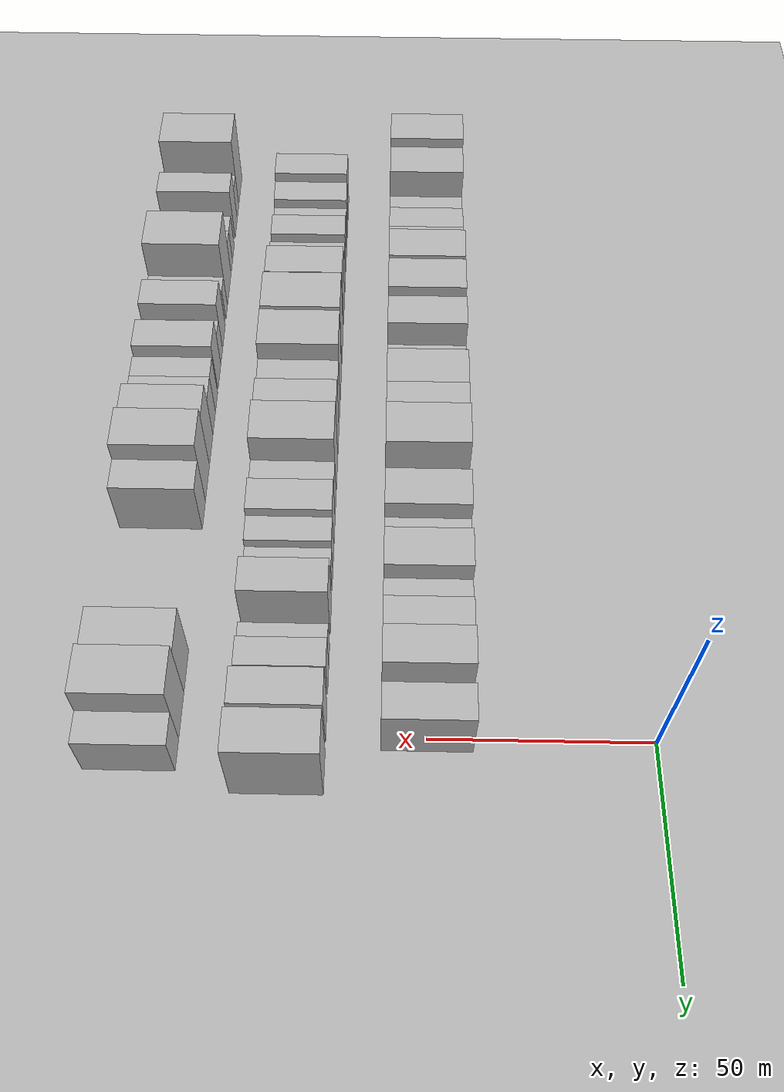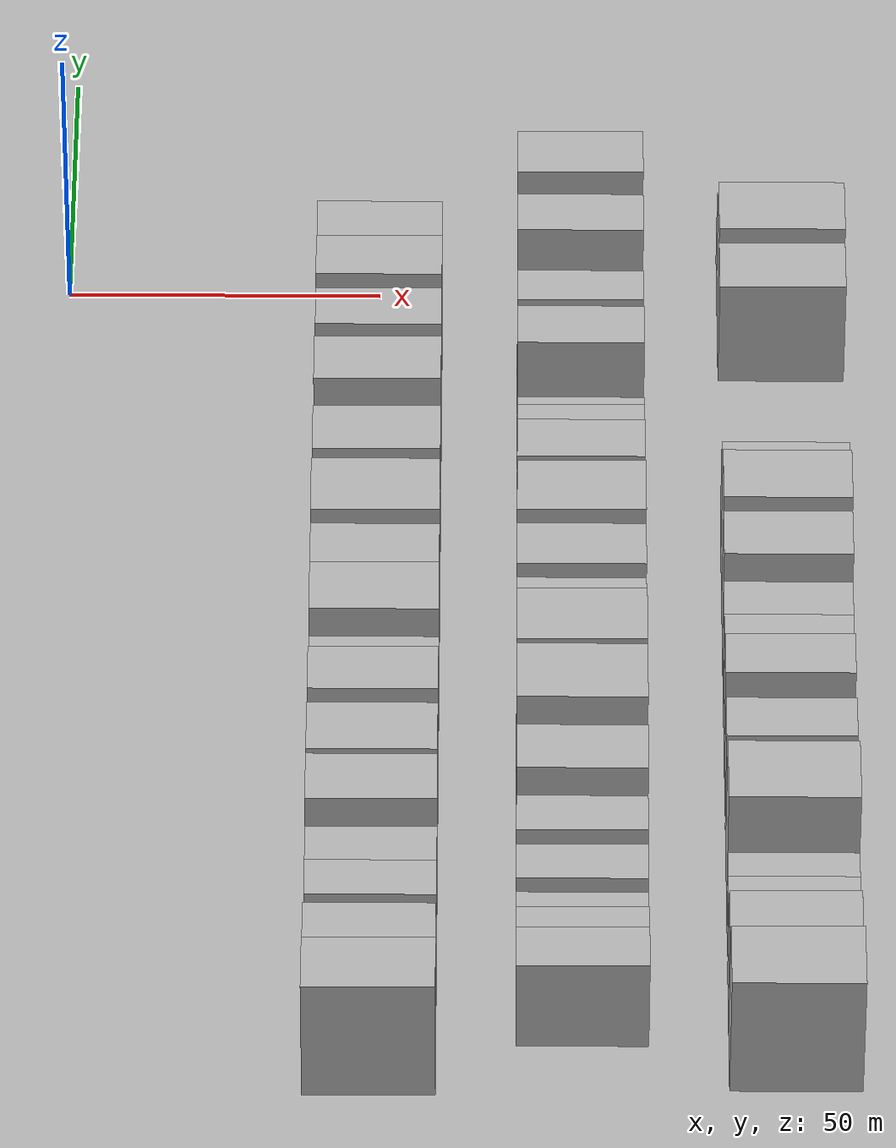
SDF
<sdf version="1.6">
 <world name="default">
  <include><name>ground_plane_1</name><uri>model://HANNAS_ground_plane</uri></include>
  <include>
   <name>ground_plane_2</name>
   <uri>model://HANNAS_ground_plane</uri>
   <pose>100 0 0  0 0 0</pose>
  </include>
  <model name="building_19">
   <static>1</static>
   <pose>50.0000 -170.6931 0 0.000000 0.000000 0.000000</pose>
   <link name="link">
    <pose>0 0 12.00 0 0 0</pose>
    <collision name="collision"><geometry><box><size>20.0000 10.2297 24.0000</size></box></geometry></collision>
    <visual name="visual">
     <cast_shadows>0</cast_shadows>
     <geometry><box><size>20.0000 10.2297 24.0000</size></box></geometry>
     <material>
      <script>
       <uri>model://HANNAS_wall/materials/scripts</uri>
       <uri>model://HANNAS_wall/materials/textures</uri>
       <name>vrc/HANNAS_wall</name>
      </script>
     </material>
    </visual>
   </link>
  </model>
  <model name="building_20">
   <static>1</static>
   <pose>50.0000 -160.5894 0 0.000000 0.000000 0.000000</pose>
   <link name="link">
    <pose>0 0 10.50 0 0 0</pose>
    <collision name="collision"><geometry><box><size>20.0000 9.9778 21.0000</size></box></geometry></collision>
    <visual name="visual">
     <cast_shadows>0</cast_shadows>
     <geometry><box><size>20.0000 9.9778 21.0000</size></box></geometry>
     <material>
      <script>
       <uri>model://HANNAS_wall/materials/scripts</uri>
       <uri>model://HANNAS_wall/materials/textures</uri>
       <name>vrc/HANNAS_wall</name>
      </script>
     </material>
    </visual>
   </link>
  </model>
  <model name="building_21">
   <static>1</static>
   <pose>50.0000 -152.8348 0 0.000000 0.000000 0.000000</pose>
   <link name="link">
    <pose>0 0 6.00 0 0 0</pose>
    <collision name="collision"><geometry><box><size>20.0000 5.5313 12.0000</size></box></geometry></collision>
    <visual name="visual">
     <cast_shadows>0</cast_shadows>
     <geometry><box><size>20.0000 5.5313 12.0000</size></box></geometry>
     <material>
      <script>
       <uri>model://HANNAS_wall/materials/scripts</uri>
       <uri>model://HANNAS_wall/materials/textures</uri>
       <name>vrc/HANNAS_wall</name>
      </script>
     </material>
    </visual>
   </link>
  </model>
  <model name="building_22">
   <static>1</static>
   <pose>50.0000 -144.4515 0 0.000000 0.000000 0.000000</pose>
   <link name="link">
    <pose>0 0 7.50 0 0 0</pose>
    <collision name="collision"><geometry><box><size>20.0000 7.2354 15.0000</size></box></geometry></collision>
    <visual name="visual">
     <cast_shadows>0</cast_shadows>
     <geometry><box><size>20.0000 7.2354 15.0000</size></box></geometry>
     <material>
      <script>
       <uri>model://HANNAS_wall/materials/scripts</uri>
       <uri>model://HANNAS_wall/materials/textures</uri>
       <name>vrc/HANNAS_wall</name>
      </script>
     </material>
    </visual>
   </link>
  </model>
  <model name="building_23">
   <static>1</static>
   <pose>50.0000 -137.3063 0 0.000000 0.000000 0.000000</pose>
   <link name="link">
    <pose>0 0 7.50 0 0 0</pose>
    <collision name="collision"><geometry><box><size>20.0000 7.0550 15.0000</size></box></geometry></collision>
    <visual name="visual">
     <cast_shadows>0</cast_shadows>
     <geometry><box><size>20.0000 7.0550 15.0000</size></box></geometry>
     <material>
      <script>
       <uri>model://HANNAS_wall/materials/scripts</uri>
       <uri>model://HANNAS_wall/materials/textures</uri>
       <name>vrc/HANNAS_wall</name>
      </script>
     </material>
    </visual>
   </link>
  </model>
  <model name="building_24">
   <static>1</static>
   <pose>50.0000 -128.9969 0 0.000000 0.000000 0.000000</pose>
   <link name="link">
    <pose>0 0 10.50 0 0 0</pose>
    <collision name="collision"><geometry><box><size>20.0000 9.5638 21.0000</size></box></geometry></collision>
    <visual name="visual">
     <cast_shadows>0</cast_shadows>
     <geometry><box><size>20.0000 9.5638 21.0000</size></box></geometry>
     <material>
      <script>
       <uri>model://HANNAS_wall/materials/scripts</uri>
       <uri>model://HANNAS_wall/materials/textures</uri>
       <name>vrc/HANNAS_wall</name>
      </script>
     </material>
    </visual>
   </link>
  </model>
  <model name="building_25">
   <static>1</static>
   <pose>50.0000 -118.2344 0 0.000000 0.000000 0.000000</pose>
   <link name="link">
    <pose>0 0 10.50 0 0 0</pose>
    <collision name="collision"><geometry><box><size>20.0000 9.9613 21.0000</size></box></geometry></collision>
    <visual name="visual">
     <cast_shadows>0</cast_shadows>
     <geometry><box><size>20.0000 9.9613 21.0000</size></box></geometry>
     <material>
      <script>
       <uri>model://HANNAS_wall/materials/scripts</uri>
       <uri>model://HANNAS_wall/materials/textures</uri>
       <name>vrc/HANNAS_wall</name>
      </script>
     </material>
    </visual>
   </link>
  </model>
  <model name="building_26">
   <static>1</static>
   <pose>50.0000 -105.6971 0 0.000000 0.000000 0.000000</pose>
   <link name="link">
    <pose>0 0 10.50 0 0 0</pose>
    <collision name="collision"><geometry><box><size>20.0000 9.1133 21.0000</size></box></geometry></collision>
    <visual name="visual">
     <cast_shadows>0</cast_shadows>
     <geometry><box><size>20.0000 9.1133 21.0000</size></box></geometry>
     <material>
      <script>
       <uri>model://HANNAS_wall/materials/scripts</uri>
       <uri>model://HANNAS_wall/materials/textures</uri>
       <name>vrc/HANNAS_wall</name>
      </script>
     </material>
    </visual>
   </link>
  </model>
  <model name="building_27">
   <static>1</static>
   <pose>50.0000 -96.0269 0 0.000000 0.000000 0.000000</pose>
   <link name="link">
    <pose>0 0 7.50 0 0 0</pose>
    <collision name="collision"><geometry><box><size>20.0000 6.2271 15.0000</size></box></geometry></collision>
    <visual name="visual">
     <cast_shadows>0</cast_shadows>
     <geometry><box><size>20.0000 6.2271 15.0000</size></box></geometry>
     <material>
      <script>
       <uri>model://HANNAS_wall/materials/scripts</uri>
       <uri>model://HANNAS_wall/materials/textures</uri>
       <name>vrc/HANNAS_wall</name>
      </script>
     </material>
    </visual>
   </link>
  </model>
  <model name="building_28">
   <static>1</static>
   <pose>50.0000 -87.7738 0 0.000000 0.000000 0.000000</pose>
   <link name="link">
    <pose>0 0 10.50 0 0 0</pose>
    <collision name="collision"><geometry><box><size>20.0000 10.2791 21.0000</size></box></geometry></collision>
    <visual name="visual">
     <cast_shadows>0</cast_shadows>
     <geometry><box><size>20.0000 10.2791 21.0000</size></box></geometry>
     <material>
      <script>
       <uri>model://HANNAS_wall/materials/scripts</uri>
       <uri>model://HANNAS_wall/materials/textures</uri>
       <name>vrc/HANNAS_wall</name>
      </script>
     </material>
    </visual>
   </link>
  </model>
  <model name="building_29">
   <static>1</static>
   <pose>50.0000 -78.3721 0 0.000000 0.000000 0.000000</pose>
   <link name="link">
    <pose>0 0 10.50 0 0 0</pose>
    <collision name="collision"><geometry><box><size>20.0000 8.5244 21.0000</size></box></geometry></collision>
    <visual name="visual">
     <cast_shadows>0</cast_shadows>
     <geometry><box><size>20.0000 8.5244 21.0000</size></box></geometry>
     <material>
      <script>
       <uri>model://HANNAS_wall/materials/scripts</uri>
       <uri>model://HANNAS_wall/materials/textures</uri>
       <name>vrc/HANNAS_wall</name>
      </script>
     </material>
    </visual>
   </link>
  </model>
  <model name="building_30">
   <static>1</static>
   <pose>50.0000 -68.3717 0 0.000000 0.000000 0.000000</pose>
   <link name="link">
    <pose>0 0 12.00 0 0 0</pose>
    <collision name="collision"><geometry><box><size>20.0000 11.4764 24.0000</size></box></geometry></collision>
    <visual name="visual">
     <cast_shadows>0</cast_shadows>
     <geometry><box><size>20.0000 11.4764 24.0000</size></box></geometry>
     <material>
      <script>
       <uri>model://HANNAS_wall/materials/scripts</uri>
       <uri>model://HANNAS_wall/materials/textures</uri>
       <name>vrc/HANNAS_wall</name>
      </script>
     </material>
    </visual>
   </link>
  </model>
  <model name="building_31">
   <static>1</static>
   <pose>50.0000 -59.9732 0 0.000000 0.000000 0.000000</pose>
   <link name="link">
    <pose>0 0 6.00 0 0 0</pose>
    <collision name="collision"><geometry><box><size>20.0000 5.3206 12.0000</size></box></geometry></collision>
    <visual name="visual">
     <cast_shadows>0</cast_shadows>
     <geometry><box><size>20.0000 5.3206 12.0000</size></box></geometry>
     <material>
      <script>
       <uri>model://HANNAS_wall/materials/scripts</uri>
       <uri>model://HANNAS_wall/materials/textures</uri>
       <name>vrc/HANNAS_wall</name>
      </script>
     </material>
    </visual>
   </link>
  </model>
  <model name="building_32">
   <static>1</static>
   <pose>50.0000 -52.4652 0 0.000000 0.000000 0.000000</pose>
   <link name="link">
    <pose>0 0 10.50 0 0 0</pose>
    <collision name="collision"><geometry><box><size>20.0000 9.6953 21.0000</size></box></geometry></collision>
    <visual name="visual">
     <cast_shadows>0</cast_shadows>
     <geometry><box><size>20.0000 9.6953 21.0000</size></box></geometry>
     <material>
      <script>
       <uri>model://HANNAS_wall/materials/scripts</uri>
       <uri>model://HANNAS_wall/materials/textures</uri>
       <name>vrc/HANNAS_wall</name>
      </script>
     </material>
    </visual>
   </link>
  </model>
  <model name="building_33">
   <static>1</static>
   <pose>50.0000 -44.5065 0 0.000000 0.000000 0.000000</pose>
   <link name="link">
    <pose>0 0 7.50 0 0 0</pose>
    <collision name="collision"><geometry><box><size>20.0000 6.2222 15.0000</size></box></geometry></collision>
    <visual name="visual">
     <cast_shadows>0</cast_shadows>
     <geometry><box><size>20.0000 6.2222 15.0000</size></box></geometry>
     <material>
      <script>
       <uri>model://HANNAS_wall/materials/scripts</uri>
       <uri>model://HANNAS_wall/materials/textures</uri>
       <name>vrc/HANNAS_wall</name>
      </script>
     </material>
    </visual>
   </link>
  </model>
  <model name="building_34">
   <static>1</static>
   <pose>50.0000 -36.5536 0 0.000000 0.000000 0.000000</pose>
   <link name="link">
    <pose>0 0 10.50 0 0 0</pose>
    <collision name="collision"><geometry><box><size>20.0000 9.6836 21.0000</size></box></geometry></collision>
    <visual name="visual">
     <cast_shadows>0</cast_shadows>
     <geometry><box><size>20.0000 9.6836 21.0000</size></box></geometry>
     <material>
      <script>
       <uri>model://HANNAS_wall/materials/scripts</uri>
       <uri>model://HANNAS_wall/materials/textures</uri>
       <name>vrc/HANNAS_wall</name>
      </script>
     </material>
    </visual>
   </link>
  </model>
  <model name="building_35">
   <static>1</static>
   <pose>50.0000 -28.7101 0 0.000000 0.000000 0.000000</pose>
   <link name="link">
    <pose>0 0 7.50 0 0 0</pose>
    <collision name="collision"><geometry><box><size>20.0000 6.0032 15.0000</size></box></geometry></collision>
    <visual name="visual">
     <cast_shadows>0</cast_shadows>
     <geometry><box><size>20.0000 6.0032 15.0000</size></box></geometry>
     <material>
      <script>
       <uri>model://HANNAS_wall/materials/scripts</uri>
       <uri>model://HANNAS_wall/materials/textures</uri>
       <name>vrc/HANNAS_wall</name>
      </script>
     </material>
    </visual>
   </link>
  </model>
  <model name="building_36">
   <static>1</static>
   <pose>50.0000 -21.5175 0 0.000000 0.000000 0.000000</pose>
   <link name="link">
    <pose>0 0 9.00 0 0 0</pose>
    <collision name="collision"><geometry><box><size>20.0000 8.3821 18.0000</size></box></geometry></collision>
    <visual name="visual">
     <cast_shadows>0</cast_shadows>
     <geometry><box><size>20.0000 8.3821 18.0000</size></box></geometry>
     <material>
      <script>
       <uri>model://HANNAS_wall/materials/scripts</uri>
       <uri>model://HANNAS_wall/materials/textures</uri>
       <name>vrc/HANNAS_wall</name>
      </script>
     </material>
    </visual>
   </link>
  </model>
  <model name="building_37">
   <static>1</static>
   <pose>50.0000 -12.8347 0 0.000000 0.000000 0.000000</pose>
   <link name="link">
    <pose>0 0 10.50 0 0 0</pose>
    <collision name="collision"><geometry><box><size>20.0000 8.9836 21.0000</size></box></geometry></collision>
    <visual name="visual">
     <cast_shadows>0</cast_shadows>
     <geometry><box><size>20.0000 8.9836 21.0000</size></box></geometry>
     <material>
      <script>
       <uri>model://HANNAS_wall/materials/scripts</uri>
       <uri>model://HANNAS_wall/materials/textures</uri>
       <name>vrc/HANNAS_wall</name>
      </script>
     </material>
    </visual>
   </link>
  </model>
  <model name="building_38">
   <static>1</static>
   <pose>50.0000 -1.1734 0 0.000000 0.000000 0.000000</pose>
   <link name="link">
    <pose>0 0 9.00 0 0 0</pose>
    <collision name="collision"><geometry><box><size>20.0000 8.3390 18.0000</size></box></geometry></collision>
    <visual name="visual">
     <cast_shadows>0</cast_shadows>
     <geometry><box><size>20.0000 8.3390 18.0000</size></box></geometry>
     <material>
      <script>
       <uri>model://HANNAS_wall/materials/scripts</uri>
       <uri>model://HANNAS_wall/materials/textures</uri>
       <name>vrc/HANNAS_wall</name>
      </script>
     </material>
    </visual>
   </link>
  </model>
  <model name="building_102">
   <static>1</static>
   <pose>82.0000 -161.6090 0 0.000000 0.000000 0.000000</pose>
   <link name="link">
    <pose>0 0 9.00 0 0 0</pose>
    <collision name="collision"><geometry><box><size>20.0000 8.0494 18.0000</size></box></geometry></collision>
    <visual name="visual">
     <cast_shadows>0</cast_shadows>
     <geometry><box><size>20.0000 8.0494 18.0000</size></box></geometry>
     <material>
      <script>
       <uri>model://HANNAS_wall/materials/scripts</uri>
       <uri>model://HANNAS_wall/materials/textures</uri>
       <name>vrc/HANNAS_wall</name>
      </script>
     </material>
    </visual>
   </link>
  </model>
  <model name="building_103">
   <static>1</static>
   <pose>82.0000 -154.0170 0 0.000000 0.000000 0.000000</pose>
   <link name="link">
    <pose>0 0 7.50 0 0 0</pose>
    <collision name="collision"><geometry><box><size>20.0000 7.1347 15.0000</size></box></geometry></collision>
    <visual name="visual">
     <cast_shadows>0</cast_shadows>
     <geometry><box><size>20.0000 7.1347 15.0000</size></box></geometry>
     <material>
      <script>
       <uri>model://HANNAS_wall/materials/scripts</uri>
       <uri>model://HANNAS_wall/materials/textures</uri>
       <name>vrc/HANNAS_wall</name>
      </script>
     </material>
    </visual>
   </link>
  </model>
  <model name="building_104">
   <static>1</static>
   <pose>82.0000 -147.4935 0 0.000000 0.000000 0.000000</pose>
   <link name="link">
    <pose>0 0 6.00 0 0 0</pose>
    <collision name="collision"><geometry><box><size>20.0000 5.9122 12.0000</size></box></geometry></collision>
    <visual name="visual">
     <cast_shadows>0</cast_shadows>
     <geometry><box><size>20.0000 5.9122 12.0000</size></box></geometry>
     <material>
      <script>
       <uri>model://HANNAS_wall/materials/scripts</uri>
       <uri>model://HANNAS_wall/materials/textures</uri>
       <name>vrc/HANNAS_wall</name>
      </script>
     </material>
    </visual>
   </link>
  </model>
  <model name="building_105">
   <static>1</static>
   <pose>82.0000 -140.9353 0 0.000000 0.000000 0.000000</pose>
   <link name="link">
    <pose>0 0 7.50 0 0 0</pose>
    <collision name="collision"><geometry><box><size>20.0000 7.2043 15.0000</size></box></geometry></collision>
    <visual name="visual">
     <cast_shadows>0</cast_shadows>
     <geometry><box><size>20.0000 7.2043 15.0000</size></box></geometry>
     <material>
      <script>
       <uri>model://HANNAS_wall/materials/scripts</uri>
       <uri>model://HANNAS_wall/materials/textures</uri>
       <name>vrc/HANNAS_wall</name>
      </script>
     </material>
    </visual>
   </link>
  </model>
  <model name="building_106">
   <static>1</static>
   <pose>82.0000 -130.6983 0 0.000000 0.000000 0.000000</pose>
   <link name="link">
    <pose>0 0 7.50 0 0 0</pose>
    <collision name="collision"><geometry><box><size>20.0000 7.2697 15.0000</size></box></geometry></collision>
    <visual name="visual">
     <cast_shadows>0</cast_shadows>
     <geometry><box><size>20.0000 7.2697 15.0000</size></box></geometry>
     <material>
      <script>
       <uri>model://HANNAS_wall/materials/scripts</uri>
       <uri>model://HANNAS_wall/materials/textures</uri>
       <name>vrc/HANNAS_wall</name>
      </script>
     </material>
    </visual>
   </link>
  </model>
  <model name="building_107">
   <static>1</static>
   <pose>82.0000 -122.4626 0 0.000000 0.000000 0.000000</pose>
   <link name="link">
    <pose>0 0 10.50 0 0 0</pose>
    <collision name="collision"><geometry><box><size>20.0000 9.2019 21.0000</size></box></geometry></collision>
    <visual name="visual">
     <cast_shadows>0</cast_shadows>
     <geometry><box><size>20.0000 9.2019 21.0000</size></box></geometry>
     <material>
      <script>
       <uri>model://HANNAS_wall/materials/scripts</uri>
       <uri>model://HANNAS_wall/materials/textures</uri>
       <name>vrc/HANNAS_wall</name>
      </script>
     </material>
    </visual>
   </link>
  </model>
  <model name="building_108">
   <static>1</static>
   <pose>82.0000 -109.0988 0 0.000000 0.000000 0.000000</pose>
   <link name="link">
    <pose>0 0 12.00 0 0 0</pose>
    <collision name="collision"><geometry><box><size>20.0000 11.5256 24.0000</size></box></geometry></collision>
    <visual name="visual">
     <cast_shadows>0</cast_shadows>
     <geometry><box><size>20.0000 11.5256 24.0000</size></box></geometry>
     <material>
      <script>
       <uri>model://HANNAS_wall/materials/scripts</uri>
       <uri>model://HANNAS_wall/materials/textures</uri>
       <name>vrc/HANNAS_wall</name>
      </script>
     </material>
    </visual>
   </link>
  </model>
  <model name="building_109">
   <static>1</static>
   <pose>82.0000 -96.8106 0 0.000000 0.000000 0.000000</pose>
   <link name="link">
    <pose>0 0 12.00 0 0 0</pose>
    <collision name="collision"><geometry><box><size>20.0000 11.0509 24.0000</size></box></geometry></collision>
    <visual name="visual">
     <cast_shadows>0</cast_shadows>
     <geometry><box><size>20.0000 11.0509 24.0000</size></box></geometry>
     <material>
      <script>
       <uri>model://HANNAS_wall/materials/scripts</uri>
       <uri>model://HANNAS_wall/materials/textures</uri>
       <name>vrc/HANNAS_wall</name>
      </script>
     </material>
    </visual>
   </link>
  </model>
  <model name="building_110">
   <static>1</static>
   <pose>82.0000 -87.0684 0 0.000000 0.000000 0.000000</pose>
   <link name="link">
    <pose>0 0 9.00 0 0 0</pose>
    <collision name="collision"><geometry><box><size>20.0000 8.4334 18.0000</size></box></geometry></collision>
    <visual name="visual">
     <cast_shadows>0</cast_shadows>
     <geometry><box><size>20.0000 8.4334 18.0000</size></box></geometry>
     <material>
      <script>
       <uri>model://HANNAS_wall/materials/scripts</uri>
       <uri>model://HANNAS_wall/materials/textures</uri>
       <name>vrc/HANNAS_wall</name>
      </script>
     </material>
    </visual>
   </link>
  </model>
  <model name="building_111">
   <static>1</static>
   <pose>82.0000 -78.3703 0 0.000000 0.000000 0.000000</pose>
   <link name="link">
    <pose>0 0 10.50 0 0 0</pose>
    <collision name="collision"><geometry><box><size>20.0000 8.9630 21.0000</size></box></geometry></collision>
    <visual name="visual">
     <cast_shadows>0</cast_shadows>
     <geometry><box><size>20.0000 8.9630 21.0000</size></box></geometry>
     <material>
      <script>
       <uri>model://HANNAS_wall/materials/scripts</uri>
       <uri>model://HANNAS_wall/materials/textures</uri>
       <name>vrc/HANNAS_wall</name>
      </script>
     </material>
    </visual>
   </link>
  </model>
  <model name="building_112">
   <static>1</static>
   <pose>82.0000 -68.4092 0 0.000000 0.000000 0.000000</pose>
   <link name="link">
    <pose>0 0 12.00 0 0 0</pose>
    <collision name="collision"><geometry><box><size>20.0000 10.9592 24.0000</size></box></geometry></collision>
    <visual name="visual">
     <cast_shadows>0</cast_shadows>
     <geometry><box><size>20.0000 10.9592 24.0000</size></box></geometry>
     <material>
      <script>
       <uri>model://HANNAS_wall/materials/scripts</uri>
       <uri>model://HANNAS_wall/materials/textures</uri>
       <name>vrc/HANNAS_wall</name>
      </script>
     </material>
    </visual>
   </link>
  </model>
  <model name="building_113">
   <static>1</static>
   <pose>82.0000 -59.3602 0 0.000000 0.000000 0.000000</pose>
   <link name="link">
    <pose>0 0 7.50 0 0 0</pose>
    <collision name="collision"><geometry><box><size>20.0000 7.1387 15.0000</size></box></geometry></collision>
    <visual name="visual">
     <cast_shadows>0</cast_shadows>
     <geometry><box><size>20.0000 7.1387 15.0000</size></box></geometry>
     <material>
      <script>
       <uri>model://HANNAS_wall/materials/scripts</uri>
       <uri>model://HANNAS_wall/materials/textures</uri>
       <name>vrc/HANNAS_wall</name>
      </script>
     </material>
    </visual>
   </link>
  </model>
  <model name="building_114">
   <static>1</static>
   <pose>82.0000 -51.6079 0 0.000000 0.000000 0.000000</pose>
   <link name="link">
    <pose>0 0 9.00 0 0 0</pose>
    <collision name="collision"><geometry><box><size>20.0000 8.3659 18.0000</size></box></geometry></collision>
    <visual name="visual">
     <cast_shadows>0</cast_shadows>
     <geometry><box><size>20.0000 8.3659 18.0000</size></box></geometry>
     <material>
      <script>
       <uri>model://HANNAS_wall/materials/scripts</uri>
       <uri>model://HANNAS_wall/materials/textures</uri>
       <name>vrc/HANNAS_wall</name>
      </script>
     </material>
    </visual>
   </link>
  </model>
  <model name="building_115">
   <static>1</static>
   <pose>82.0000 -44.1715 0 0.000000 0.000000 0.000000</pose>
   <link name="link">
    <pose>0 0 7.50 0 0 0</pose>
    <collision name="collision"><geometry><box><size>20.0000 6.5070 15.0000</size></box></geometry></collision>
    <visual name="visual">
     <cast_shadows>0</cast_shadows>
     <geometry><box><size>20.0000 6.5070 15.0000</size></box></geometry>
     <material>
      <script>
       <uri>model://HANNAS_wall/materials/scripts</uri>
       <uri>model://HANNAS_wall/materials/textures</uri>
       <name>vrc/HANNAS_wall</name>
      </script>
     </material>
    </visual>
   </link>
  </model>
  <model name="building_116">
   <static>1</static>
   <pose>82.0000 -38.4791 0 0.000000 0.000000 0.000000</pose>
   <link name="link">
    <pose>0 0 6.00 0 0 0</pose>
    <collision name="collision"><geometry><box><size>20.0000 4.8778 12.0000</size></box></geometry></collision>
    <visual name="visual">
     <cast_shadows>0</cast_shadows>
     <geometry><box><size>20.0000 4.8778 12.0000</size></box></geometry>
     <material>
      <script>
       <uri>model://HANNAS_wall/materials/scripts</uri>
       <uri>model://HANNAS_wall/materials/textures</uri>
       <name>vrc/HANNAS_wall</name>
      </script>
     </material>
    </visual>
   </link>
  </model>
  <model name="building_117">
   <static>1</static>
   <pose>82.0000 -28.8179 0 0.000000 0.000000 0.000000</pose>
   <link name="link">
    <pose>0 0 10.50 0 0 0</pose>
    <collision name="collision"><geometry><box><size>20.0000 8.4447 21.0000</size></box></geometry></collision>
    <visual name="visual">
     <cast_shadows>0</cast_shadows>
     <geometry><box><size>20.0000 8.4447 21.0000</size></box></geometry>
     <material>
      <script>
       <uri>model://HANNAS_wall/materials/scripts</uri>
       <uri>model://HANNAS_wall/materials/textures</uri>
       <name>vrc/HANNAS_wall</name>
      </script>
     </material>
    </visual>
   </link>
  </model>
  <model name="building_118">
   <static>1</static>
   <pose>82.0000 -19.1384 0 0.000000 0.000000 0.000000</pose>
   <link name="link">
    <pose>0 0 6.00 0 0 0</pose>
    <collision name="collision"><geometry><box><size>20.0000 4.9142 12.0000</size></box></geometry></collision>
    <visual name="visual">
     <cast_shadows>0</cast_shadows>
     <geometry><box><size>20.0000 4.9142 12.0000</size></box></geometry>
     <material>
      <script>
       <uri>model://HANNAS_wall/materials/scripts</uri>
       <uri>model://HANNAS_wall/materials/textures</uri>
       <name>vrc/HANNAS_wall</name>
      </script>
     </material>
    </visual>
   </link>
  </model>
  <model name="building_119">
   <static>1</static>
   <pose>82.0000 -13.2791 0 0.000000 0.000000 0.000000</pose>
   <link name="link">
    <pose>0 0 7.50 0 0 0</pose>
    <collision name="collision"><geometry><box><size>20.0000 6.8044 15.0000</size></box></geometry></collision>
    <visual name="visual">
     <cast_shadows>0</cast_shadows>
     <geometry><box><size>20.0000 6.8044 15.0000</size></box></geometry>
     <material>
      <script>
       <uri>model://HANNAS_wall/materials/scripts</uri>
       <uri>model://HANNAS_wall/materials/textures</uri>
       <name>vrc/HANNAS_wall</name>
      </script>
     </material>
    </visual>
   </link>
  </model>
  <model name="building_120">
   <static>1</static>
   <pose>82.0000 -2.6751 0 0.000000 0.000000 0.000000</pose>
   <link name="link">
    <pose>0 0 10.50 0 0 0</pose>
    <collision name="collision"><geometry><box><size>20.0000 8.4038 21.0000</size></box></geometry></collision>
    <visual name="visual">
     <cast_shadows>0</cast_shadows>
     <geometry><box><size>20.0000 8.4038 21.0000</size></box></geometry>
     <material>
      <script>
       <uri>model://HANNAS_wall/materials/scripts</uri>
       <uri>model://HANNAS_wall/materials/textures</uri>
       <name>vrc/HANNAS_wall</name>
      </script>
     </material>
    </visual>
   </link>
  </model>
  <model name="building_121">
   <static>1</static>
   <pose>82.0000 8.3523 0 0.000000 0.000000 0.000000</pose>
   <link name="link">
    <pose>0 0 12.00 0 0 0</pose>
    <collision name="collision"><geometry><box><size>20.0000 9.6511 24.0000</size></box></geometry></collision>
    <visual name="visual">
     <cast_shadows>0</cast_shadows>
     <geometry><box><size>20.0000 9.6511 24.0000</size></box></geometry>
     <material>
      <script>
       <uri>model://HANNAS_wall/materials/scripts</uri>
       <uri>model://HANNAS_wall/materials/textures</uri>
       <name>vrc/HANNAS_wall</name>
      </script>
     </material>
    </visual>
   </link>
  </model>
  <model name="building_179">
   <static>1</static>
   <pose>114.0000 -168.8517 0 0.000000 0.000000 0.000000</pose>
   <link name="link">
    <pose>0 0 12.00 0 0 0</pose>
    <collision name="collision"><geometry><box><size>20.0000 11.7345 24.0000</size></box></geometry></collision>
    <visual name="visual">
     <cast_shadows>0</cast_shadows>
     <geometry><box><size>20.0000 11.7345 24.0000</size></box></geometry>
     <material>
      <script>
       <uri>model://HANNAS_wall/materials/scripts</uri>
       <uri>model://HANNAS_wall/materials/textures</uri>
       <name>vrc/HANNAS_wall</name>
      </script>
     </material>
    </visual>
   </link>
  </model>
  <model name="building_180">
   <static>1</static>
   <pose>114.0000 -160.1956 0 0.000000 0.000000 0.000000</pose>
   <link name="link">
    <pose>0 0 6.00 0 0 0</pose>
    <collision name="collision"><geometry><box><size>20.0000 5.5778 12.0000</size></box></geometry></collision>
    <visual name="visual">
     <cast_shadows>0</cast_shadows>
     <geometry><box><size>20.0000 5.5778 12.0000</size></box></geometry>
     <material>
      <script>
       <uri>model://HANNAS_wall/materials/scripts</uri>
       <uri>model://HANNAS_wall/materials/textures</uri>
       <name>vrc/HANNAS_wall</name>
      </script>
     </material>
    </visual>
   </link>
  </model>
  <model name="building_181">
   <static>1</static>
   <pose>114.0000 -153.6212 0 0.000000 0.000000 0.000000</pose>
   <link name="link">
    <pose>0 0 9.00 0 0 0</pose>
    <collision name="collision"><geometry><box><size>20.0000 7.5711 18.0000</size></box></geometry></collision>
    <visual name="visual">
     <cast_shadows>0</cast_shadows>
     <geometry><box><size>20.0000 7.5711 18.0000</size></box></geometry>
     <material>
      <script>
       <uri>model://HANNAS_wall/materials/scripts</uri>
       <uri>model://HANNAS_wall/materials/textures</uri>
       <name>vrc/HANNAS_wall</name>
      </script>
     </material>
    </visual>
   </link>
  </model>
  <model name="building_182">
   <static>1</static>
   <pose>114.0000 -143.9572 0 0.000000 0.000000 0.000000</pose>
   <link name="link">
    <pose>0 0 6.00 0 0 0</pose>
    <collision name="collision"><geometry><box><size>20.0000 5.7568 12.0000</size></box></geometry></collision>
    <visual name="visual">
     <cast_shadows>0</cast_shadows>
     <geometry><box><size>20.0000 5.7568 12.0000</size></box></geometry>
     <material>
      <script>
       <uri>model://HANNAS_wall/materials/scripts</uri>
       <uri>model://HANNAS_wall/materials/textures</uri>
       <name>vrc/HANNAS_wall</name>
      </script>
     </material>
    </visual>
   </link>
  </model>
  <model name="building_183">
   <static>1</static>
   <pose>114.0000 -138.5827 0 0.000000 0.000000 0.000000</pose>
   <link name="link">
    <pose>0 0 6.00 0 0 0</pose>
    <collision name="collision"><geometry><box><size>20.0000 4.9924 12.0000</size></box></geometry></collision>
    <visual name="visual">
     <cast_shadows>0</cast_shadows>
     <geometry><box><size>20.0000 4.9924 12.0000</size></box></geometry>
     <material>
      <script>
       <uri>model://HANNAS_wall/materials/scripts</uri>
       <uri>model://HANNAS_wall/materials/textures</uri>
       <name>vrc/HANNAS_wall</name>
      </script>
     </material>
    </visual>
   </link>
  </model>
  <model name="building_184">
   <static>1</static>
   <pose>114.0000 -130.1003 0 0.000000 0.000000 0.000000</pose>
   <link name="link">
    <pose>0 0 12.00 0 0 0</pose>
    <collision name="collision"><geometry><box><size>20.0000 11.9723 24.0000</size></box></geometry></collision>
    <visual name="visual">
     <cast_shadows>0</cast_shadows>
     <geometry><box><size>20.0000 11.9723 24.0000</size></box></geometry>
     <material>
      <script>
       <uri>model://HANNAS_wall/materials/scripts</uri>
       <uri>model://HANNAS_wall/materials/textures</uri>
       <name>vrc/HANNAS_wall</name>
      </script>
     </material>
    </visual>
   </link>
  </model>
  <model name="building_185">
   <static>1</static>
   <pose>114.0000 -121.6283 0 0.000000 0.000000 0.000000</pose>
   <link name="link">
    <pose>0 0 6.00 0 0 0</pose>
    <collision name="collision"><geometry><box><size>20.0000 4.9717 12.0000</size></box></geometry></collision>
    <visual name="visual">
     <cast_shadows>0</cast_shadows>
     <geometry><box><size>20.0000 4.9717 12.0000</size></box></geometry>
     <material>
      <script>
       <uri>model://HANNAS_wall/materials/scripts</uri>
       <uri>model://HANNAS_wall/materials/textures</uri>
       <name>vrc/HANNAS_wall</name>
      </script>
     </material>
    </visual>
   </link>
  </model>
  <model name="building_186">
   <static>1</static>
   <pose>114.0000 -113.0112 0 0.000000 0.000000 0.000000</pose>
   <link name="link">
    <pose>0 0 9.00 0 0 0</pose>
    <collision name="collision"><geometry><box><size>20.0000 8.2626 18.0000</size></box></geometry></collision>
    <visual name="visual">
     <cast_shadows>0</cast_shadows>
     <geometry><box><size>20.0000 8.2626 18.0000</size></box></geometry>
     <material>
      <script>
       <uri>model://HANNAS_wall/materials/scripts</uri>
       <uri>model://HANNAS_wall/materials/textures</uri>
       <name>vrc/HANNAS_wall</name>
      </script>
     </material>
    </visual>
   </link>
  </model>
  <model name="building_187">
   <static>1</static>
   <pose>114.0000 -106.1883 0 0.000000 0.000000 0.000000</pose>
   <link name="link">
    <pose>0 0 6.00 0 0 0</pose>
    <collision name="collision"><geometry><box><size>20.0000 5.3832 12.0000</size></box></geometry></collision>
    <visual name="visual">
     <cast_shadows>0</cast_shadows>
     <geometry><box><size>20.0000 5.3832 12.0000</size></box></geometry>
     <material>
      <script>
       <uri>model://HANNAS_wall/materials/scripts</uri>
       <uri>model://HANNAS_wall/materials/textures</uri>
       <name>vrc/HANNAS_wall</name>
      </script>
     </material>
    </visual>
   </link>
  </model>
  <model name="building_188">
   <static>1</static>
   <pose>114.0000 -99.2400 0 0.000000 0.000000 0.000000</pose>
   <link name="link">
    <pose>0 0 9.00 0 0 0</pose>
    <collision name="collision"><geometry><box><size>20.0000 8.5134 18.0000</size></box></geometry></collision>
    <visual name="visual">
     <cast_shadows>0</cast_shadows>
     <geometry><box><size>20.0000 8.5134 18.0000</size></box></geometry>
     <material>
      <script>
       <uri>model://HANNAS_wall/materials/scripts</uri>
       <uri>model://HANNAS_wall/materials/textures</uri>
       <name>vrc/HANNAS_wall</name>
      </script>
     </material>
    </visual>
   </link>
  </model>
  <model name="building_189">
   <static>1</static>
   <pose>114.0000 -90.8680 0 0.000000 0.000000 0.000000</pose>
   <link name="link">
    <pose>0 0 7.50 0 0 0</pose>
    <collision name="collision"><geometry><box><size>20.0000 6.2306 15.0000</size></box></geometry></collision>
    <visual name="visual">
     <cast_shadows>0</cast_shadows>
     <geometry><box><size>20.0000 6.2306 15.0000</size></box></geometry>
     <material>
      <script>
       <uri>model://HANNAS_wall/materials/scripts</uri>
       <uri>model://HANNAS_wall/materials/textures</uri>
       <name>vrc/HANNAS_wall</name>
      </script>
     </material>
    </visual>
   </link>
  </model>
  <model name="building_190">
   <static>1</static>
   <pose>114.0000 -84.1421 0 0.000000 0.000000 0.000000</pose>
   <link name="link">
    <pose>0 0 7.50 0 0 0</pose>
    <collision name="collision"><geometry><box><size>20.0000 7.2211 15.0000</size></box></geometry></collision>
    <visual name="visual">
     <cast_shadows>0</cast_shadows>
     <geometry><box><size>20.0000 7.2211 15.0000</size></box></geometry>
     <material>
      <script>
       <uri>model://HANNAS_wall/materials/scripts</uri>
       <uri>model://HANNAS_wall/materials/textures</uri>
       <name>vrc/HANNAS_wall</name>
      </script>
     </material>
    </visual>
   </link>
  </model>
  <model name="building_191">
   <static>1</static>
   <pose>114.0000 -75.7788 0 0.000000 0.000000 0.000000</pose>
   <link name="link">
    <pose>0 0 10.50 0 0 0</pose>
    <collision name="collision"><geometry><box><size>20.0000 9.5055 21.0000</size></box></geometry></collision>
    <visual name="visual">
     <cast_shadows>0</cast_shadows>
     <geometry><box><size>20.0000 9.5055 21.0000</size></box></geometry>
     <material>
      <script>
       <uri>model://HANNAS_wall/materials/scripts</uri>
       <uri>model://HANNAS_wall/materials/textures</uri>
       <name>vrc/HANNAS_wall</name>
      </script>
     </material>
    </visual>
   </link>
  </model>
  <model name="building_192">
   <static>1</static>
   <pose>114.0000 -65.7394 0 0.000000 0.000000 0.000000</pose>
   <link name="link">
    <pose>0 0 12.00 0 0 0</pose>
    <collision name="collision"><geometry><box><size>20.0000 10.5733 24.0000</size></box></geometry></collision>
    <visual name="visual">
     <cast_shadows>0</cast_shadows>
     <geometry><box><size>20.0000 10.5733 24.0000</size></box></geometry>
     <material>
      <script>
       <uri>model://HANNAS_wall/materials/scripts</uri>
       <uri>model://HANNAS_wall/materials/textures</uri>
       <name>vrc/HANNAS_wall</name>
      </script>
     </material>
    </visual>
   </link>
  </model>
  <model name="building_193">
   <static>1</static>
   <pose>114.0000 -56.4200 0 0.000000 0.000000 0.000000</pose>
   <link name="link">
    <pose>0 0 9.00 0 0 0</pose>
    <collision name="collision"><geometry><box><size>20.0000 8.0655 18.0000</size></box></geometry></collision>
    <visual name="visual">
     <cast_shadows>0</cast_shadows>
     <geometry><box><size>20.0000 8.0655 18.0000</size></box></geometry>
     <material>
      <script>
       <uri>model://HANNAS_wall/materials/scripts</uri>
       <uri>model://HANNAS_wall/materials/textures</uri>
       <name>vrc/HANNAS_wall</name>
      </script>
     </material>
    </visual>
   </link>
  </model>
  <model name="building_194">
   <static>1</static>
   <pose>114.0000 -14.8922 0 0.000000 0.000000 0.000000</pose>
   <link name="link">
    <pose>0 0 10.50 0 0 0</pose>
    <collision name="collision"><geometry><box><size>20.0000 10.3300 21.0000</size></box></geometry></collision>
    <visual name="visual">
     <cast_shadows>0</cast_shadows>
     <geometry><box><size>20.0000 10.3300 21.0000</size></box></geometry>
     <material>
      <script>
       <uri>model://HANNAS_wall/materials/scripts</uri>
       <uri>model://HANNAS_wall/materials/textures</uri>
       <name>vrc/HANNAS_wall</name>
      </script>
     </material>
    </visual>
   </link>
  </model>
  <model name="building_195">
   <static>1</static>
   <pose>114.0000 -4.2464 0 0.000000 0.000000 0.000000</pose>
   <link name="link">
    <pose>0 0 12.00 0 0 0</pose>
    <collision name="collision"><geometry><box><size>20.0000 10.9617 24.0000</size></box></geometry></collision>
    <visual name="visual">
     <cast_shadows>0</cast_shadows>
     <geometry><box><size>20.0000 10.9617 24.0000</size></box></geometry>
     <material>
      <script>
       <uri>model://HANNAS_wall/materials/scripts</uri>
       <uri>model://HANNAS_wall/materials/textures</uri>
       <name>vrc/HANNAS_wall</name>
      </script>
     </material>
    </visual>
   </link>
  </model>
  <model name="building_196">
   <static>1</static>
   <pose>114.0000 4.8652 0 0.000000 0.000000 0.000000</pose>
   <link name="link">
    <pose>0 0 7.50 0 0 0</pose>
    <collision name="collision"><geometry><box><size>20.0000 7.2615 15.0000</size></box></geometry></collision>
    <visual name="visual">
     <cast_shadows>0</cast_shadows>
     <geometry><box><size>20.0000 7.2615 15.0000</size></box></geometry>
     <material>
      <script>
       <uri>model://HANNAS_wall/materials/scripts</uri>
       <uri>model://HANNAS_wall/materials/textures</uri>
       <name>vrc/HANNAS_wall</name>
      </script>
     </material>
    </visual>
   </link>
  </model>
 </world>
</sdf>
